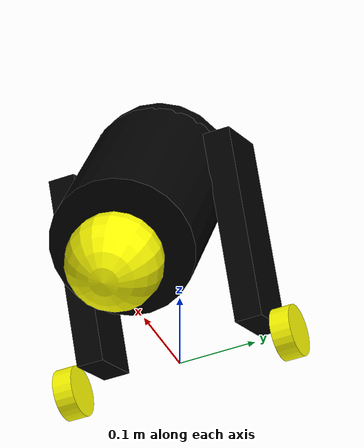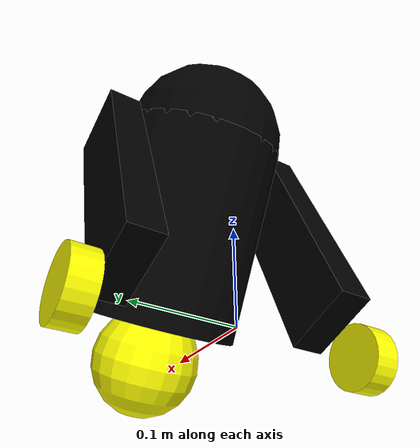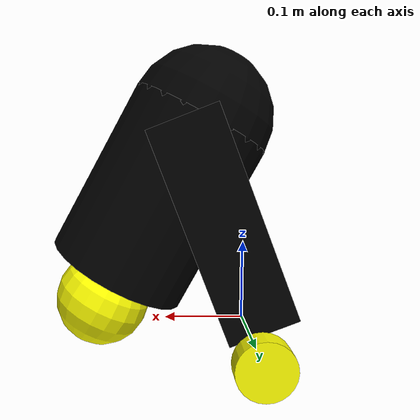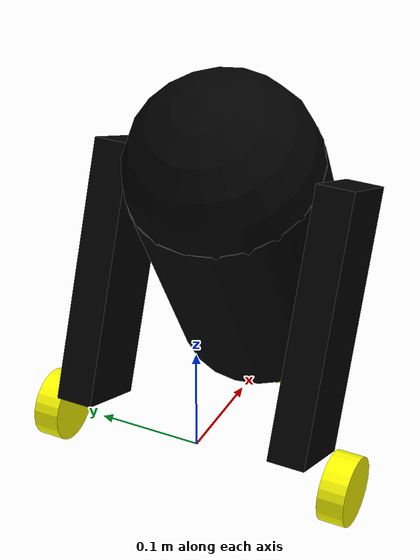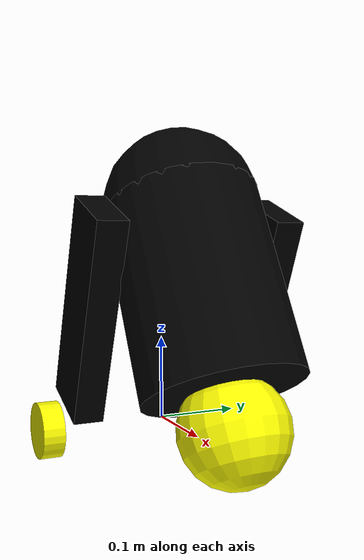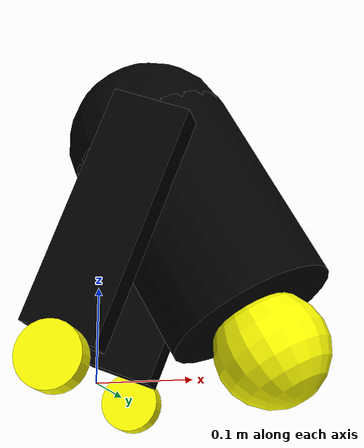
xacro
<?xml version="1.0"?>
<robot xmlns:xacro="http://www.ros.org/wiki/xacro" >

    <xacro:include filename="inertial_macros.xacro"/>

    <material name="yellow">
        <color rgba="1 1 0 1"/>
    </material>

    <material name="black">
        <color rgba="0 0 0 1"/>
    </material>

    <link name="base_link">

    </link>

    <joint name="base_footprint_joint" type="fixed">
        <parent link="base_link"/>
        <child link="base_footprint"/>
        <origin xyz="0.0 0.0 0.0" rpy="0.0 0.0 0.0"/>
    </joint>

    <link name="base_footprint">
    </link>

    <!-- Chassis Joint -->
    <joint name="chassis_joint" type="fixed">
        <parent link="base_link"/>
        <child link="chassis"/>
        <origin xyz="0.075 0.0 0.222" rpy="0.0 0.5 ${pi}"/>
    </joint>

    <!-- Chassis Link -->
    <link name="chassis">
        <visual>
            <origin xyz="0.0 0.0 -0.07"/>
            <geometry>
                <cylinder radius="0.09" length=".222"/>
            </geometry>
            <material name="black"/>
        </visual>

        <collision>
            <origin xyz="0.0 0.0 -0.07"/>
            <geometry>
                <cylinder radius="0.09" length=".222"/>
            </geometry>
        </collision>

        <xacro:inertial_cylinder mass="0.5" length="0.222 " radius="0.09">
            <origin xyz="0.0 0.0 -0.07" rpy="0 0 0"/>
        </xacro:inertial_cylinder>
    </link>

    <!-- Chassis Gazebo Tag -->
    <gazebo reference="chassis">
        <material> Gazebo/Black </material>
    </gazebo>

    <!-- Arms Joint -->
    <joint name="arm_joint" type="fixed">
        <parent link="chassis"/>
        <child link="arms"/>
        <origin xyz="0 0.0 0.0" rpy="0.0 0.0 0.0"/>
    </joint>

    <!-- Arms Link -->
    <link name="arms">
        <!-- Right Arm (Maybe lolw) -->
        <visual>
            <origin xyz="0.07 0.106 -0.055" rpy="0.0 0.7 0.0"/>
            <geometry>
                <box size="0.245 0.035 0.08"/>
            </geometry>
            <material name="black"/>
        </visual>

        <collision>
            <origin xyz="0.07 0.106 -0.055" rpy="0.0 0.7 0.0"/>
            <geometry>
                <box size="0.245 0.035 0.08"/>
            </geometry>
        </collision>

        <xacro:inertial_box mass="0.5" x="0.245" y="0.035" z="0.08">
            <origin xyz="0.07 0.106 -0.055" rpy="0.0 0.7 0.0"/>
        </xacro:inertial_box>

        <!-- Left Arm (Maybe lolw) -->
        <visual>
            <origin xyz="0.07 -0.106 -0.055" rpy="0.0 0.7 0.0"/>
            <geometry>
                <box size="0.245 0.035 0.08"/>
            </geometry>
            <material name="black"/>
        </visual>

        <collision>
            <origin xyz="0.07 -0.106 -0.055" rpy="0.0 0.7 0.0"/>
            <geometry>
                <box size="0.245 0.035 0.08"/>
            </geometry>
        </collision>

        <xacro:inertial_box mass="0.5" x="0.245" y="0.035" z="0.08">
            <origin xyz="0.07 -0.106 -0.055" rpy="0.0 0.7 0.0"/>
        </xacro:inertial_box>

    </link>

    <!-- Gazebo Arms Color -->
    <gazebo reference="arms">
        <material> Gazebo/Black </material>
    </gazebo>

    <!-- Left Wheel Joint -->
    <joint name="left_wheel_joint" type="continuous">
        <parent link="base_link"/>
        <child link="left_wheel"/>
        <origin xyz="0.0 0.145 0.0" rpy="-${pi/2} 0.0 0.0"/>
        <axis xyz="0.0 0.0 1.0"/>
    </joint>

    <!-- Left Wheel link -->
    <link name="left_wheel">
        <visual>
            <geometry>
                <cylinder radius="0.0325" length="0.025"/>
            </geometry>
            <material name="yellow"/>
        </visual>

        <collision>
            <geometry>
                <sphere radius="0.0325"/>
            </geometry>
        </collision>

        <xacro:inertial_cylinder mass="0.1" length="0.025" radius="0.0325">
            <origin xyz="0.0 0.0 0.0" rpy="0 0 0"/>
        </xacro:inertial_cylinder>

    </link>

    <!-- Gazebo Wheel Color -->
    <gazebo reference="left_wheel">
        <material> Gazebo/Yellow </material>
    </gazebo>

    <!-- Right Wheel Joint -->
    <joint name="right_wheel_joint" type="continuous">
        <parent link="base_link"/>
        <child link="right_wheel"/>
        <origin xyz="0.0 -0.145 0.0" rpy="${pi/2} 0.0 0.0"/>
        <axis xyz="0.0 0.0 -1.0"/>
    </joint>

    <!-- Right Wheel Link -->
    <link name="right_wheel">
        <visual>
            <geometry>
                <cylinder radius="0.0325" length="0.025"/>
            </geometry>
            <material name="yellow"/>
        </visual>

        <collision>
            <geometry>
                <sphere radius="0.0325"/>
            </geometry>
        </collision>

        <xacro:inertial_cylinder mass="0.1" length="0.025" radius="0.0325">
            <origin xyz="0.0 0.0 0.0" rpy="0 0 0"/>
        </xacro:inertial_cylinder>

    </link>

    <gazebo reference="right_wheel">
        <material> Gazebo/Yellow </material>
    </gazebo>

    <!-- Caster Wheel Joint -->
    <joint name="caster_wheel_joint" type="fixed">
        <parent link="chassis"/>
        <child link="caster_wheel"/>
        <origin xyz="0.0 0.0 -0.222"/>
    </joint>

    <!-- Caster Wheel Link -->
    <link name="caster_wheel">
        <visual>
            <geometry>
                <sphere radius="0.06"/>
            </geometry>
            <material name="yellow"/>
        </visual>

        <collision>
            <geometry>
                <sphere radius="0.06"/>
            </geometry>
        </collision>

        <xacro:inertial_sphere mass="0.1" radius="0.06">
            <origin xyz="0.0 0.0 0.0" rpy="0 0 0"/>
        </xacro:inertial_sphere>

    </link>

    <gazebo reference="caster_wheel">
        <material> Gazebo/Yellow </material>
        <mu1 value="0.001"/>
        <mu2 value="0.001"/>
    </gazebo>

    <!-- Head Joint -->
    <joint name="head_joint" type="fixed">
        <parent link="chassis"/>
        <child link="head"/>
        <origin xyz="0.0 0.0 0.04"/>
    </joint>

    <!-- Head Link -->
    <link name="head">
        <visual>
            <geometry>
                <sphere radius="0.09"/>
            </geometry>
            <material name="black"/>
        </visual>

        <collision>
            <geometry>
                <sphere radius="0.09"/>
            </geometry>
        </collision>

        <xacro:inertial_sphere mass="0.1" radius="0.09">
            <origin xyz="0.0 0.0 0.04" rpy="0 0 0"/>
        </xacro:inertial_sphere>

    </link>

    <gazebo reference="head">
        <material> Gazebo/Black</material>
    </gazebo>

</robot>
